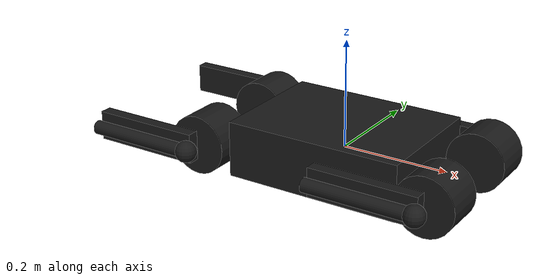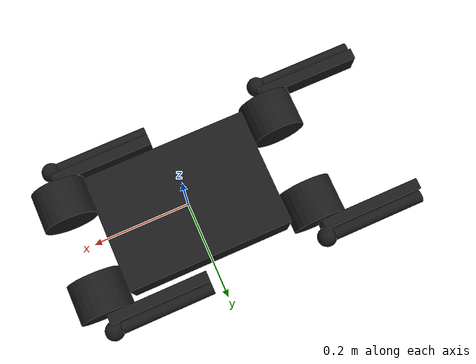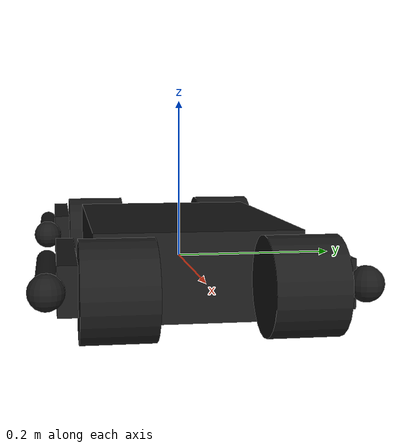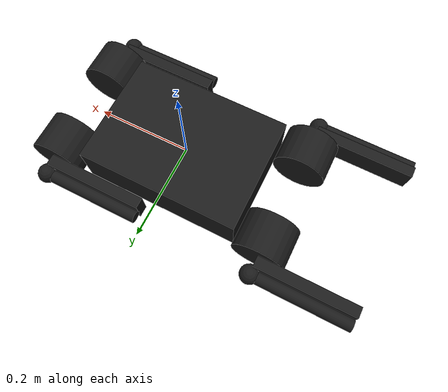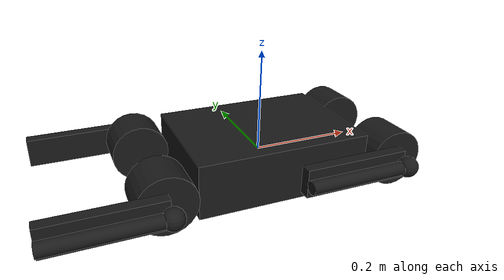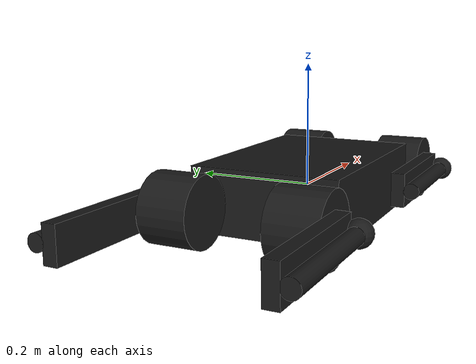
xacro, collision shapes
<?xml version="1.0"?>

<robot xmlns:xacro="http://www.ros.org/wiki/xacro" name="spirit">

	<!-- Define parameters -->
	<!-- bodyLength + hipdx should be equal to front to back hip distance -->
	<!-- dy +  dPodAxisToEdge + upperLegWidth should be equal to the center to toe distance along y axis-->
	<xacro:property name="pi" value="3.14159265359"/>
	<xacro:property name="bodyLength" value="0.335"/>
	<xacro:property name="bodyWidth" value="0.24"/>
	<xacro:property name="bodyHeight" value="0.104"/>
	<xacro:property name="bodyMass" value="5.75"/>
	<xacro:property name="podMass" value="0.575"/>
	<xacro:property name="upperLegMass" value="0.775"/>
	<xacro:property name="upperLegIxx" value="0.00005"/> <!-- guess -->
	<xacro:property name="upperLegIyy" value="0.001"/> <!-- guess -->
	<xacro:property name="upperLegIzz" value="0.001"/> <!-- guess -->
	<xacro:property name="lowerLegMass" value="0.075"/>
	<xacro:property name="lowerLegIxx" value="0.000005"/> <!-- guess -->
	<xacro:property name="lowerLegIyy" value="0.0001"/> <!-- guess -->
	<xacro:property name="lowerLegIzz" value="0.0001"/> <!-- guess -->
	<xacro:property name="toeMass" value="0.015"/>
	<xacro:property name="upperLegLength" value="0.206"/>
	<xacro:property name="upperLegWidth" value="0.022"/>
	<xacro:property name="upperLegHeight" value="0.055"/>
	<xacro:property name="lowerLegLength" value="0.206"/>
	<xacro:property name="lowerLegRadius" value="0.013"/> <!--visual only-->
	<xacro:property name="podLength" value="0.08"/>
	<xacro:property name="podRadius" value="0.055"/>
	<xacro:property name="dPodAxisToEdge" value="0.028"/> <!--center of pod cylinder to the ab axis-->
	<xacro:property name="abOffs" value="0.10098"/>
	<xacro:property name="dx" value="0.2263"/>
	<xacro:property name="dy" value="0.07"/>
	<xacro:property name="toeRadius" value="0.02"/>
	<xacro:property name="toeOffset" value="0.0"/>
	<xacro:property name="toeStiffness" value="30000.0"/>
	<xacro:property name="toeDamping" value="1000.0"/>
	<xacro:property name="toeSpinningFriction" value="0.3"/>
    <xacro:property name="toeFriction" value="100.0"/>
	<xacro:property name="toeLateralFriction" value="50.0"/>
	<xacro:property name="abKinLimit" value="0.707"/>
	<xacro:property name="abSpeedLimit" value="30"/>
	<xacro:property name="abEffortLimit" value="40"/>
	<xacro:property name="jointSpeedLimit" value="30"/>
	<xacro:property name="jointEffortLimit" value="40"/>

	<!-- Define materials -->
	<material name="darkgray">
		<color rgba="0.1 0.1 0.1 1.0"/>
	</material>
	<material name="silver">
		<color rgba="0.3 0.3 0.3 1.0"/>
	</material>
	<material name="red">
		<color rgba="0.8 0.0 0.2 1.0"/>
	</material>

	<!-- Body -->
	<link name="body">

		<visual>
			<origin rpy="0 0 0" xyz="0.03 0 0"/>
			<geometry>
				<mesh filename="package://ghost_description/meshes/Spirit40/Spirit40_Body_Mesh_transformed.stl" scale="1 1 1"/>
			</geometry>
			<material name="darkgray"/>
		</visual>

		<inertial>
			<mass value="${bodyMass}"/>
			<!-- Uniform box -->
			<inertia ixx="0.05"  ixy="0"  ixz="0" iyy="0.1" iyz="0" izz="0.1" />
		</inertial>

		<!-- Just copy geometry for collision -->
		<collision>
		<origin rpy="0 0 0" xyz="0 0 0"/>
			<geometry>
				<box size="${bodyLength} ${bodyWidth} ${bodyHeight}"/>
			</geometry>
		</collision>
	</link>
	<gazebo reference="body">
        <material>Gazebo/Gray</material>
    </gazebo>

	<link name="base_link"/>
	<joint name="base_link_to_body" type="fixed">
		<parent link="base_link"/>
		<child link="body"/>
		<origin xyz="0.0 0.0 0.0" rpy="0 0 0"/>
		<axis xyz="1 0 0"/>
	</joint>

	<!-- this way planner can run unchanged-->
	<link name="t265_pose_frame"/>
	<joint name="body_to_t265" type="fixed">
		<parent link="body"/>
		<child link="t265_pose_frame"/>
		<origin xyz="0.0 0.0 0.0" rpy="0 0 0"/>
		<axis xyz="1 0 0"/>
	</joint>

	<gazebo reference="body">
		<gravity>true</gravity>
		<sensor name="imu_sensor" type="imu">
			<always_on>true</always_on>
			<visualize>true</visualize>
			<topic>__default_topic_</topic>
			<plugin filename="libgazebo_ros_imu_sensor.so" name="imu_plugin">
				<topicName>imu</topicName>
				<bodyName>body</bodyName>
				<updateRateHZ>500.0</updateRateHZ>
				<gaussianNoise>0.0</gaussianNoise>
				<xyzOffset>0 0 0</xyzOffset>
				<rpyOffset>0 0 0</rpyOffset>
				<frameName>body</frameName>
				<initialOrientationAsReference>true</initialOrientationAsReference>
			</plugin>
			<pose>0 0 0 0 0 0</pose>
		</sensor>
	</gazebo>

	<!-- Define our leg macro -->
	<xacro:macro name="leg" params="suffix left front hipJointName kneeJointName abductionJointName hipJointLowerLimit hipJointUpperLimit color">

		<!-- Hip motor -->
		<link name="hip${suffix}">
			<visual>
				<xacro:if value="${front == 1 and left == 1}">
					<origin rpy="0 0 0" xyz="0 0.0 0"/>
				</xacro:if>

				<xacro:if value="${front == -1 and left == 1}">
					<origin rpy="0 ${pi} 0" xyz="0.0 0.0 0"/>
				</xacro:if>

				<xacro:if value="${front == 1 and left == -1}">
					<origin rpy="${pi} 0 0" xyz="0.0 0 0.0"/>
				</xacro:if>

				<xacro:if value="${front == -1 and left == -1}">
					<origin rpy="${pi} ${pi} 0" xyz="0.0 0.0 0.0"/>
				</xacro:if>

				<geometry>
					<mesh filename="package://ghost_description/meshes/Spirit40/Spirit40_Hip_Module_transformed.stl"
						  scale="1 1 1"/>
				</geometry>

				<material name="darkgray"/>
			</visual>

			<collision>
				<origin rpy="${pi/2} 0 0" xyz="0 ${left * (dPodAxisToEdge)} 0"/>
				<geometry>
					<cylinder length="${podLength}" radius="${podRadius}"/>
				</geometry>
			</collision>

			<inertial>
				<mass value="${podMass}"/>
				<inertia ixx="0.00066963541"  ixy="0"  ixz="0" iyy="0.00066963541" iyz="0" izz="0.0008696875" />
			</inertial>
		</link>
		<gazebo reference="hip${suffix}">
            <material>Gazebo/Gray</material>
        </gazebo>

		<!-- Abduction joint. Joint names are: 8 9 10 11 -->
		<joint name="${abductionJointName}" type="revolute">
			<parent link="body"/>
			<child link="hip${suffix}"/>
			<axis xyz="1 0 0"/>
			<origin xyz="${front * dx} ${left * dy} 0"/>
			<limit effort="${abEffortLimit}" velocity="${abSpeedLimit}" lower="${-abKinLimit}" upper="${abKinLimit}"/>
			<dynamics damping="0.0" friction="0.0"/>
		</joint>

		<!-- Transmission elements required for Gazebo -->
        <transmission name="transmission_${abductionJointName}">
            <type>transmission_interface/SimpleTransmission</type>
            <joint name="${abductionJointName}">
                <hardwareInterface>hardware_interface/EffortJointInterface</hardwareInterface>
            </joint>
            <actuator name="motor_${abductionJointName}">
                <hardwareInterface>EffortJointInterface</hardwareInterface>
                <mechanicalReduction>1</mechanicalReduction>
            </actuator>
        </transmission>

		<!-- Upper leg -->
		<link name="upper${suffix}">
			<visual>
				<xacro:if value="${left == 1}">
					<origin rpy="0 0  0" xyz="0 -0.02 0"/>
				</xacro:if>

				<xacro:if value="${left == -1}">
					<origin rpy="${pi} 0  0" xyz="0 0.02 0"/>
				</xacro:if>
				<geometry>
					<mesh filename="package://ghost_description/meshes/Spirit40/Spirit40_Upper_leg_transformed.stl"
						  scale="1 1 1"/>
				</geometry>

				<material name="darkgray"/>
			</visual>

			<collision>
				<origin rpy="0 0 0" xyz="-${upperLegLength/2} ${-left*upperLegWidth} 0"/>
				<geometry>
					<box size="${upperLegLength} ${upperLegWidth} ${upperLegHeight}"/>
				</geometry>
			</collision>

			<inertial>
				<mass value="${upperLegMass}"/>
				<inertia ixx="${upperLegIxx}"  ixy="0" ixz="0" iyy="${upperLegIyy}" iyz="0" izz="${upperLegIzz}"/>
			</inertial>
		</link>
		<gazebo reference="upper${suffix}">
            <material>Gazebo/Gray</material>
        </gazebo>

		<!-- Hip joint. (Motor to upper leg). Joint names are: 0 2 4 6 -->
		<joint name="${hipJointName}" type="revolute">
			<parent link="hip${suffix}"/>
			<child link="upper${suffix}"/>
			<axis xyz="0 -1 0"/>
			<origin xyz="${front * 0} ${left * abOffs} 0"/> <!--  rpy="0 -0.3 0" -->
			<limit effort="${jointEffortLimit}" velocity="${jointSpeedLimit}" lower="${hipJointLowerLimit}" upper="${hipJointUpperLimit}"/>
			<dynamics damping="0.0" friction="0.0"/>
		</joint>

		<!-- Transmission elements required for Gazebo -->
        <transmission name="transmission_${hipJointName}">
            <type>transmission_interface/SimpleTransmission</type>
            <joint name="${hipJointName}">
                <hardwareInterface>hardware_interface/EffortJointInterface</hardwareInterface>
            </joint>
            <actuator name="motor_${hipJointName}">
                <hardwareInterface>EffortJointInterface</hardwareInterface>
                <mechanicalReduction>1</mechanicalReduction>
            </actuator>
        </transmission>

		<!-- Lower leg -->
		<link name="lower${suffix}">
			<visual>
				<xacro:if value="${left == 1}">
					<origin rpy="0 0  0" xyz="0 0 0"/>
				</xacro:if>

				<xacro:if value="${left == -1}">
					<origin rpy="${pi} 0  0" xyz="0 0 0"/>
				</xacro:if>
				<geometry>
					<mesh filename="package://ghost_description/meshes/Spirit40/Spirit40_Lower_Leg_transformed.stl"
						  scale="1 1 1"/>
				</geometry>

				<material name="darkgray"/>
			</visual>

			<collision>
				<origin rpy="0 ${pi/2} 0" xyz="${lowerLegLength/2} 0 0"/>
				<geometry>
					<cylinder length="${lowerLegLength}" radius="${lowerLegRadius}"/>
				</geometry>
			</collision>

			<inertial>
				<mass value="${lowerLegMass}"/>
				<inertia ixx="${lowerLegIxx}"  ixy="0" ixz="0" iyy="${lowerLegIyy}" iyz="0" izz="${lowerLegIzz}"/>
			</inertial>
		</link>

		<gazebo reference="lower${suffix}">
            <material>Gazebo/Black</material>
        </gazebo>

		<!-- Knee joint. Joint names are: 1 3 5 7 -->
		<joint name="${kneeJointName}" type="revolute">
			<parent link="upper${suffix}"/>
			<child link="lower${suffix}"/>
			<axis xyz="0 1 0"/>
			<origin xyz="-${upperLegLength} 0 0"/> <!--rpy="0 0.5 0"-->
			<limit effort="${jointEffortLimit}" velocity="${jointSpeedLimit}" lower="0" upper="${pi}"/>
			<dynamics damping="0.0" friction="0.0"/>
		</joint>

		<!-- Transmission elements required for Gazebo -->
        <transmission name="transmission_${kneeJointName}">
            <type>transmission_interface/SimpleTransmission</type>
            <joint name="${kneeJointName}">
                <hardwareInterface>hardware_interface/EffortJointInterface</hardwareInterface>
            </joint>
            <actuator name="motor_${kneeJointName}">
                <hardwareInterface>EffortJointInterface</hardwareInterface>
                <mechanicalReduction>1</mechanicalReduction>
            </actuator>
        </transmission>

		<!-- Toe -->
		<link name="toe${suffix}">
			<contact>
				<friction_anchor/>
				<stiffness value="${toeStiffness}"/>
				<damping value="${toeDamping}"/>
				<spinning_friction value="${toeSpinningFriction}"/>
				<lateral_friction value="${toeLateralFriction}"/>
			</contact>
			<visual>
				<origin rpy="0 0 0" xyz="0 0 0"/>
				<geometry>
					<sphere radius="0.001"/>
				</geometry>
				<material name="darkgray"/>
			</visual>

			<collision>
				<origin rpy="0 0 0" xyz="0 0 0"/>
				<geometry>
					<sphere radius="${toeRadius}"/>
				</geometry>
				<surface>
					<friction>
						<ode>
							<mu>100000</mu>
							<mu2>100000</mu2>
						</ode>
					</friction>
					<contact>
						<ode>
							<kp>${toeStiffness}</kp>
							<kd>${toeDamping}</kd>
						</ode>
					</contact>
				</surface>
			</collision>

			<inertial>
				<mass value="${toeMass}"/>
				<inertia ixx="0.000025"  ixy="0"  ixz="0" iyy="0.000025" iyz="0" izz="0.000025" />
			</inertial>
		</link>

		<gazebo reference="toe${suffix}">
            <material>Gazebo/DarkGray</material>
            <collision>
                <surface>
                    <bounce>
                        <restitution_coefficient>0</restitution_coefficient>
                        <threshold>1e+06</threshold>
                    </bounce>
                    <friction>
                        <torsional>
                            <coefficient>${toeSpinningFriction}</coefficient>
                        </torsional>
                        <ode>
                            <mu>${toeFriction}</mu>
                            <mu2>${toeLateralFriction}</mu2>
                        </ode>
                        <bullet>
                            <rolling_friction>${toeSpinningFriction}</rolling_friction>
                            <friction2>${toeLateralFriction}</friction2>
                        </bullet>
                    </friction>
                    <contact>
                        <bullet>
                            <kp>${toeStiffness}</kp>
                            <kd>${toeDamping}</kd>
                        </bullet>
                        <ode>
                            <kp>${toeStiffness}</kp>
                            <kd>${toeDamping}</kd>
                        </ode>
                    </contact>
                </surface>
            </collision>
        </gazebo>

		<joint name="jtoe${suffix}" type="fixed">
			<parent link="lower${suffix}"/>
			<child link="toe${suffix}"/>
			<origin xyz="${lowerLegLength} 0 -${toeOffset}"/>
			<dynamics damping="0.0" friction="0.0"/>
		</joint>

	</xacro:macro>

	<!-- Our four legs -->
	<xacro:leg suffix="0" hipJointName="0" kneeJointName="1" abductionJointName="8" front="1" left="1" hipJointLowerLimit="${-2*pi}" hipJointUpperLimit="${2*pi}" color="darkgray"/>
 	<xacro:leg suffix="1" hipJointName="2" kneeJointName="3" abductionJointName="9" front="-1" left="1" hipJointLowerLimit="${-2*pi}" hipJointUpperLimit="${2*pi}" color="darkgray"/>
 	<xacro:leg suffix="2" hipJointName="4" kneeJointName="5" abductionJointName="10" front="1" left="-1" hipJointLowerLimit="${-2*pi}" hipJointUpperLimit="${2*pi}" color="red"/>
 	<xacro:leg suffix="3" hipJointName="6" kneeJointName="7" abductionJointName="11" front="-1" left="-1" hipJointLowerLimit="${-2*pi}" hipJointUpperLimit="${2*pi}" color="darkgray"/>

 	<!-- Add ros_control plugin -->
    <gazebo>
        <plugin name="gazebo_ros_control" filename="libgazebo_ros_control.so">
        </plugin>
    </gazebo>
</robot>
